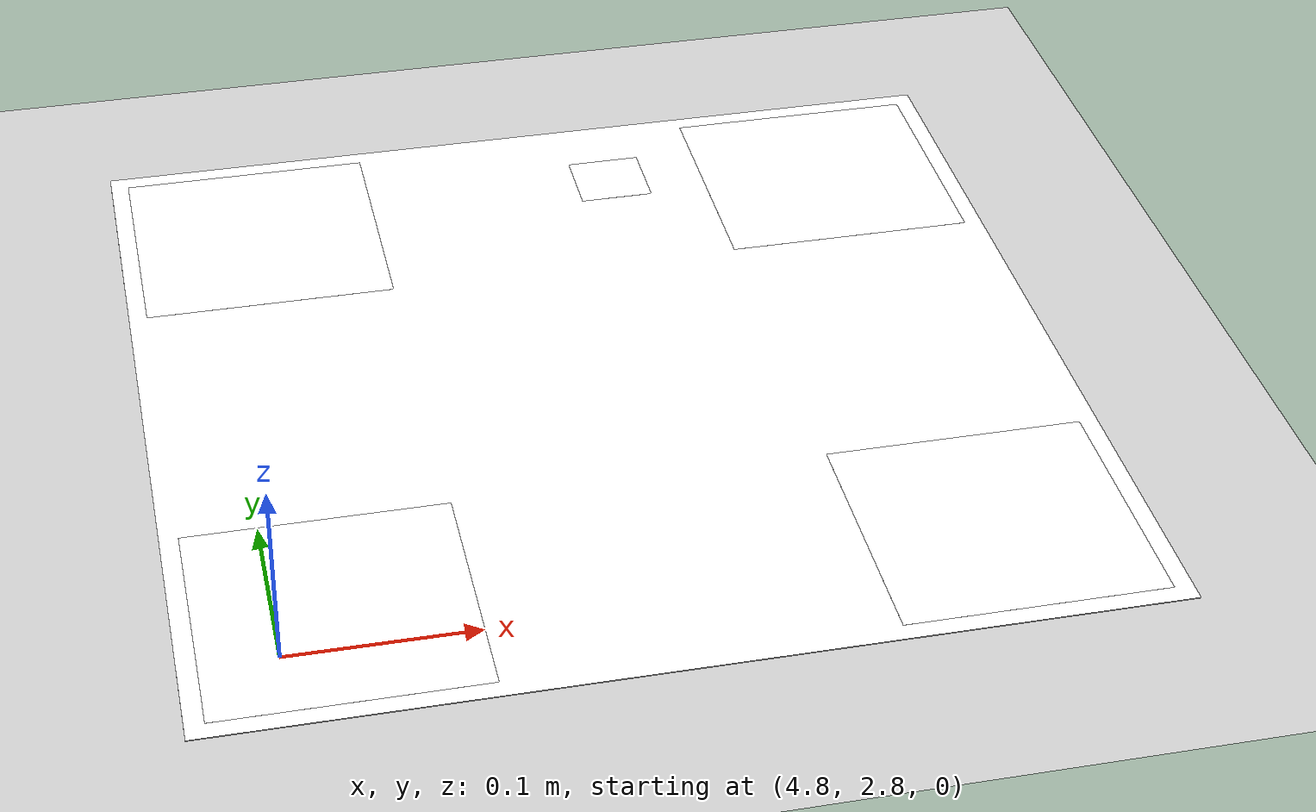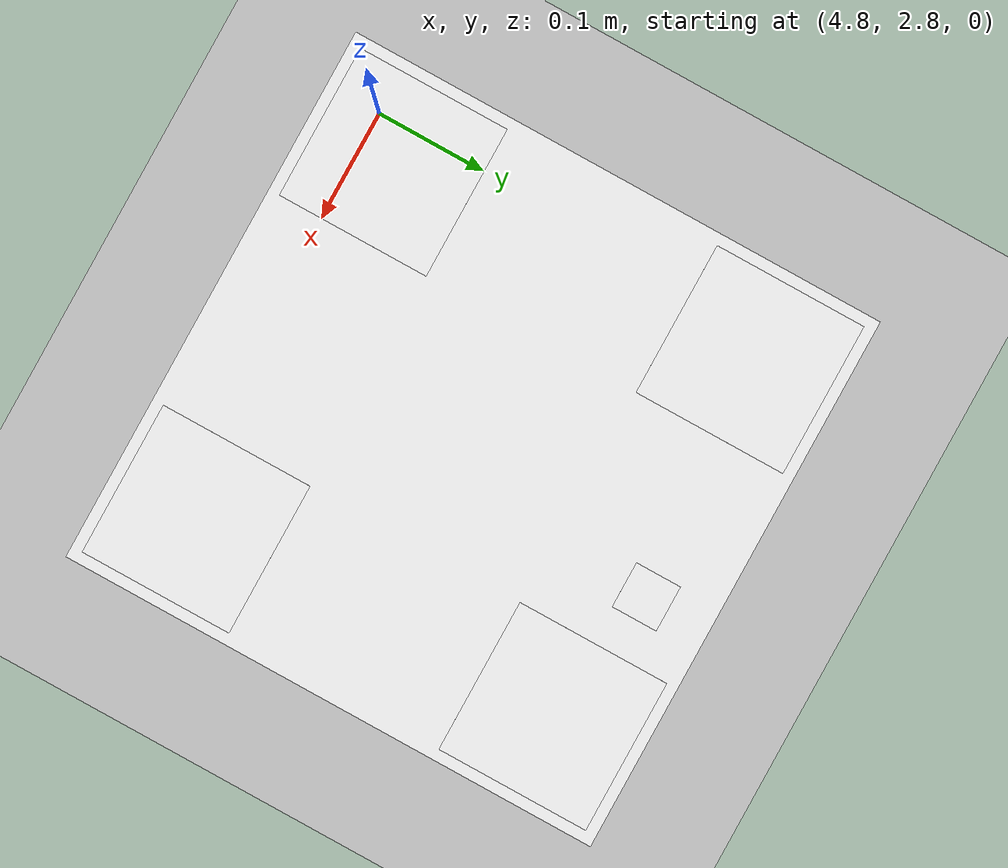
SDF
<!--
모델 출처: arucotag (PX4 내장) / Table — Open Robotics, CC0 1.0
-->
<sdf version="1.9">
 <world name="my_custom_world">
  <physics type="ode">
   <max_step_size>0.004</max_step_size>
   <real_time_factor>1.0</real_time_factor>
   <real_time_update_rate>250</real_time_update_rate>
  </physics>
  <gravity>0 0 -9.8</gravity>
  <magnetic_field>6e-06 2.3e-05 -4.2e-05</magnetic_field>
  <atmosphere type="adiabatic"/>
  <scene>
   <grid>false</grid>
   <ambient>0.4 0.4 0.4 1</ambient>
   <background>0.7 0.7 0.7 1</background>
   <shadows>true</shadows>
  </scene>
  <model name="ground_plane">
   <static>true</static>
   <link name="link">
    <collision name="collision">
     <geometry><plane><normal>0 0 1</normal><size>1 1</size></plane></geometry>
    </collision>
    <visual name="visual">
     <geometry><plane><normal>0 0 1</normal><size>100 100</size></plane></geometry>
     <material>
      <ambient>0.8 0.8 0.8 1</ambient>
      <diffuse>0.8 0.8 0.8 1</diffuse>
      <specular>0.8 0.8 0.8 1</specular>
     </material>
    </visual>
    <inertial>
     <mass>1</mass>
     <inertia><ixx>1</ixx><ixy>0</ixy><ixz>0</ixz><iyy>1</iyy><iyz>0</iyz><izz>1</izz></inertia>
    </inertial>
   </link>
  </model>
  <light name="sunUTC" type="directional">
   <pose>0 0 500 0 -0 0</pose>
   <intensity>1</intensity>
   <direction>0.001 0.625 -0.78</direction>
   <diffuse>0.904 0.904 0.904 1</diffuse>
   <specular>0.271 0.271 0.271 1</specular>
   <attenuation><range>2000</range><linear>0</linear><constant>1</constant><quadratic>0</quadratic></attenuation>
   <spot><inner_angle>0</inner_angle><outer_angle>0</outer_angle><falloff>0</falloff></spot>
  </light>
  <spherical_coordinates>
   <surface_model>EARTH_WGS84</surface_model>
   <world_frame_orientation>ENU</world_frame_orientation>
   <latitude_deg>37.551187</latitude_deg>
   <longitude_deg>127.073880</longitude_deg>
   <elevation>0</elevation>
  </spherical_coordinates>
  <include><uri>model://arucotag</uri><name>marker_a</name><pose>5 3 0.001 0 0 0</pose></include>
 </world>
</sdf>

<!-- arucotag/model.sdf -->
<sdf version='1.9'>
  <model name='arucotag'>
    <static>true</static>
    <pose>0 0 0.001 0 0 0</pose>
    <link name='base'>
      <visual name='background_visual'>
        <geometry>
          <plane>
            <normal>0 0 1</normal>
            <size>0.5 0.5</size>
          </plane>
        </geometry>
        <material>
          <diffuse>1 1 1 1</diffuse>
          <specular>0.2 0.2 0.2 1</specular>
        </material>
      </visual>
      <visual name='tag_0_visual'>
        <pose>0.17 0.17 0.0002 0 0 0</pose>
        <geometry>
          <plane>
            <normal>0 0 1</normal>
            <size>0.14 0.14</size>
          </plane>
        </geometry>
        <material>
          <diffuse>1 1 1 1</diffuse>
          <specular>0.4 0.4 0.4 1</specular>
          <pbr>
            <metal>
              <albedo_map>model://arucotag/aruco_0.png</albedo_map>
            </metal>
          </pbr>
        </material>
      </visual>
      <visual name='tag_1_visual'>
        <pose>-0.17 0.17 0.0002 0 0 0</pose>
        <geometry>
          <plane>
            <normal>0 0 1</normal>
            <size>0.14 0.14</size>
          </plane>
        </geometry>
        <material>
          <diffuse>1 1 1 1</diffuse>
          <specular>0.4 0.4 0.4 1</specular>
          <pbr>
            <metal>
              <albedo_map>model://arucotag/aruco_1.png</albedo_map>
            </metal>
          </pbr>
        </material>
      </visual>
      <visual name='tag_2_visual'>
        <pose>-0.17 -0.17 0.0002 0 0 0</pose>
        <geometry>
          <plane>
            <normal>0 0 1</normal>
            <size>0.14 0.14</size>
          </plane>
        </geometry>
        <material>
          <diffuse>1 1 1 1</diffuse>
          <specular>0.4 0.4 0.4 1</specular>
          <pbr>
            <metal>
              <albedo_map>model://arucotag/aruco_2.png</albedo_map>
            </metal>
          </pbr>
        </material>
      </visual>
      <visual name='tag_3_visual'>
        <pose>0.17 -0.17 0.0002 0 0 0</pose>
        <geometry>
          <plane>
            <normal>0 0 1</normal>
            <size>0.14 0.14</size>
          </plane>
        </geometry>
        <material>
          <diffuse>1 1 1 1</diffuse>
          <specular>0.4 0.4 0.4 1</specular>
          <pbr>
            <metal>
              <albedo_map>model://arucotag/aruco_3.png</albedo_map>
            </metal>
          </pbr>
        </material>
      </visual>
      <visual name='tag_4_visual'>
        <pose>0.0 0.11 0.0002 0 0 0</pose>
        <geometry>
          <plane>
            <normal>0 0 1</normal>
            <size>0.07 0.07</size>
          </plane>
        </geometry>
        <material>
          <diffuse>1 1 1 1</diffuse>
          <specular>0.4 0.4 0.4 1</specular>
          <pbr>
            <metal>
              <albedo_map>model://arucotag/aruco_4.png</albedo_map>
            </metal>
          </pbr>
        </material>
      </visual>
      <visual name='tag_5_visual'>
        <pose>-0.11 0.0 0.0002 0 0 0</pose>
        <geometry>
          <plane>
            <normal>0 0 1</normal>
            <size>0.07 0.07</size>
          </plane>
        </geometry>
        <material>
          <diffuse>1 1 1 1</diffuse>
          <specular>0.4 0.4 0.4 1</specular>
          <pbr>
            <metal>
              <albedo_map>model://arucotag/aruco_5.png</albedo_map>
            </metal>
          </pbr>
        </material>
      </visual>
      <visual name='tag_6_visual'>
        <pose>0.0 -0.11 0.0002 0 0 0</pose>
        <geometry>
          <plane>
            <normal>0 0 1</normal>
            <size>0.07 0.07</size>
          </plane>
        </geometry>
        <material>
          <diffuse>1 1 1 1</diffuse>
          <specular>0.4 0.4 0.4 1</specular>
          <pbr>
            <metal>
              <albedo_map>model://arucotag/aruco_6.png</albedo_map>
            </metal>
          </pbr>
        </material>
      </visual>
      <visual name='tag_7_visual'>
        <pose>0.11 0.0 0.0002 0 0 0</pose>
        <geometry>
          <plane>
            <normal>0 0 1</normal>
            <size>0.07 0.07</size>
          </plane>
        </geometry>
        <material>
          <diffuse>1 1 1 1</diffuse>
          <specular>0.4 0.4 0.4 1</specular>
          <pbr>
            <metal>
              <albedo_map>model://arucotag/aruco_7.png</albedo_map>
            </metal>
          </pbr>
        </material>
      </visual>
      <visual name='tag_8_visual'>
        <pose>0.0 0.045 0.0002 0 0 0</pose>
        <geometry>
          <plane>
            <normal>0 0 1</normal>
            <size>0.025 0.025</size>
          </plane>
        </geometry>
        <material>
          <diffuse>1 1 1 1</diffuse>
          <specular>0.4 0.4 0.4 1</specular>
          <pbr>
            <metal>
              <albedo_map>model://arucotag/aruco_8.png</albedo_map>
            </metal>
          </pbr>
        </material>
      </visual>
      <visual name='tag_9_visual'>
        <pose>-0.045 0.0 0.0002 0 0 0</pose>
        <geometry>
          <plane>
            <normal>0 0 1</normal>
            <size>0.025 0.025</size>
          </plane>
        </geometry>
        <material>
          <diffuse>1 1 1 1</diffuse>
          <specular>0.4 0.4 0.4 1</specular>
          <pbr>
            <metal>
              <albedo_map>model://arucotag/aruco_9.png</albedo_map>
            </metal>
          </pbr>
        </material>
      </visual>
      <visual name='tag_10_visual'>
        <pose>0.0 -0.045 0.0002 0 0 0</pose>
        <geometry>
          <plane>
            <normal>0 0 1</normal>
            <size>0.025 0.025</size>
          </plane>
        </geometry>
        <material>
          <diffuse>1 1 1 1</diffuse>
          <specular>0.4 0.4 0.4 1</specular>
          <pbr>
            <metal>
              <albedo_map>model://arucotag/aruco_10.png</albedo_map>
            </metal>
          </pbr>
        </material>
      </visual>
      <visual name='tag_11_visual'>
        <pose>0.045 0.0 0.0002 0 0 0</pose>
        <geometry>
          <plane>
            <normal>0 0 1</normal>
            <size>0.025 0.025</size>
          </plane>
        </geometry>
        <material>
          <diffuse>1 1 1 1</diffuse>
          <specular>0.4 0.4 0.4 1</specular>
          <pbr>
            <metal>
              <albedo_map>model://arucotag/aruco_11.png</albedo_map>
            </metal>
          </pbr>
        </material>
      </visual>
      <visual name='tag_12_visual'>
        <pose>0.0 0.0 0.0002 0 0 0</pose>
        <geometry>
          <plane>
            <normal>0 0 1</normal>
            <size>0.018 0.018</size>
          </plane>
        </geometry>
        <material>
          <diffuse>1 1 1 1</diffuse>
          <specular>0.4 0.4 0.4 1</specular>
          <pbr>
            <metal>
              <albedo_map>model://arucotag/aruco_12.png</albedo_map>
            </metal>
          </pbr>
        </material>
      </visual>
      <!-- Small, flat drawing of the positive board axes.  It sits in the
           marker-free gap between the two large +Y-side tags. -->
      <visual name='board_positive_axes_drawing'>
        <pose>0.045 0.190 0.0005 0 0 0</pose>
        <geometry>
          <plane>
            <normal>0 0 1</normal>
            <size>0.042 0.042</size>
          </plane>
        </geometry>
        <material>
          <diffuse>1 1 1 1</diffuse>
          <specular>0 0 0 1</specular>
          <pbr>
            <metal>
              <albedo_map>model://arucotag/board_axes_xy.png</albedo_map>
            </metal>
          </pbr>
        </material>
      </visual>
    </link>
  </model>
</sdf>
